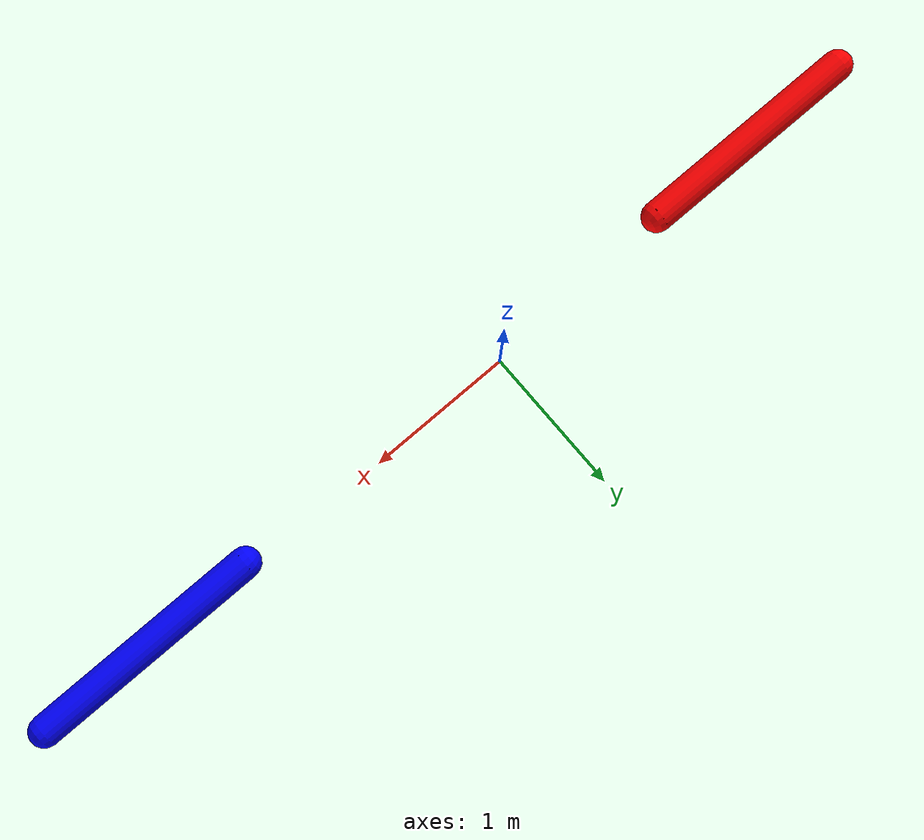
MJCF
<mujoco>
  <option gravity="0 0 -9.81"/>
  <worldbody>
    <light diffuse="0.5 0.5 0.5" pos="0 0 5" dir="0 0 -1"/>
    <body name="ground" pos="0 0 -10">
      <geom type="plane" size="50 50 0.1" rgba="0.85 0.85 0.85 1" friction="1 1 1"/>
    </body>
    <body name="rod_center" pos="-2 0 0.5">
      <geom type="capsule" fromto="-0.75 0 0 0.75 0 0" size="0.1" mass="2" rgba="1 0 0 1"/>
      <joint type="hinge" axis="0 0 1"/>
    </body>
    <body name="rod_end" pos="2 0 0.5">
      <geom type="capsule" fromto="0 0 0 1.5 0 0" size="0.1" mass="2" rgba="0 0 1 1"/>
      <joint type="hinge" axis="0 0 1"/>
    </body>
  </worldbody>
</mujoco>
